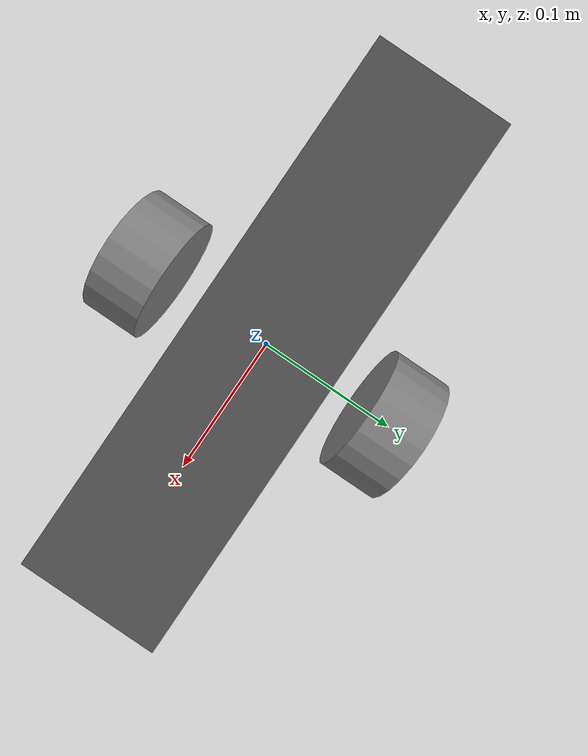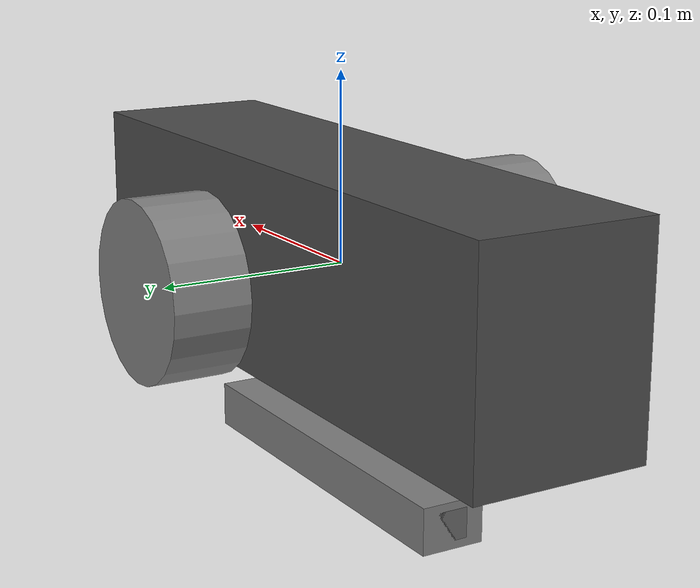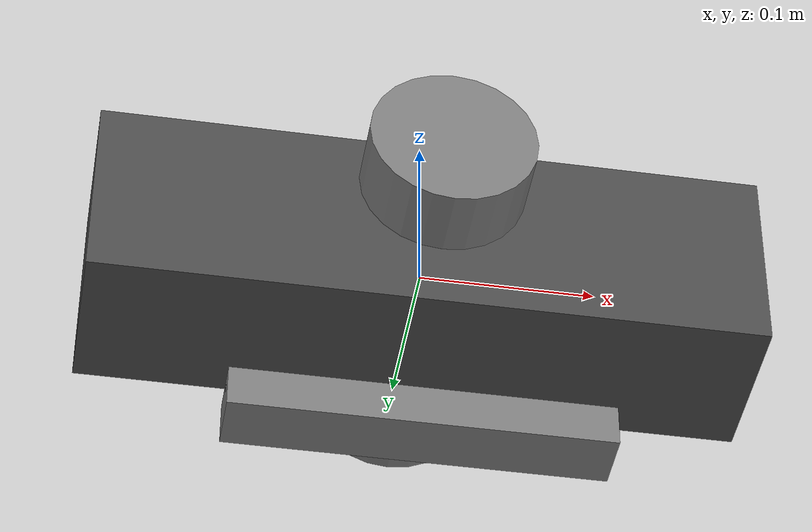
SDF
<?xml version="1.0" ?>
<sdf version="1.9">
  <model name="go2">

    <!-- base_link: massless floating base anchored to trunk -->
    <link name="base_link">
      <inertial><mass>0.001</mass><inertia><ixx>1e-6</ixx><ixy>0</ixy><ixz>0</ixz><iyy>1e-6</iyy><iyz>0</iyz><izz>1e-6</izz></inertia></inertial>
      <visual name="v"><geometry><box><size>0.001 0.001 0.001</size></box></geometry></visual>
      <collision name="c"><geometry><box><size>0.001 0.001 0.001</size></box></geometry></collision>
    </link>
    <joint name="floating_base" type="fixed"><parent>base_link</parent><child>trunk</child></joint>

    <!-- trunk: 0.3762 x 0.0935 x 0.114 m, 6.921 kg -->
    <link name="trunk">
      <inertial>
        <pose>0.021112 0 -0.005366 0 0 0</pose><mass>6.921</mass>
        <inertia><ixx>0.02448</ixx><ixy>0.00012166</ixy><ixz>0.0014849</ixz><iyy>0.098077</iyy><iyz>-3.12e-5</iyz><izz>0.107</izz></inertia>
      </inertial>
      <visual name="trunk_v">
        <geometry><box><size>0.3762 0.0935 0.114</size></box></geometry>
        <material><ambient>0.3 0.3 0.3 1</ambient><diffuse>0.3 0.3 0.3 1</diffuse></material>
      </visual>
      <collision name="trunk_c"><geometry><box><size>0.3762 0.0935 0.114</size></box></geometry></collision>
    </link>

    <!-- IMU link — body-centre, 200 Hz -->
    <link name="imu_link">
      <inertial><mass>0.001</mass><inertia><ixx>1e-4</ixx><ixy>0</ixy><ixz>0</ixz><iyy>1e-4</iyy><iyz>0</iyz><izz>1e-4</izz></inertia></inertial>
      <visual name="v"><geometry><box><size>0.001 0.001 0.001</size></box></geometry></visual>
      <collision name="c"><geometry><box><size>0.001 0.001 0.001</size></box></geometry></collision>
      <sensor name="imu_sensor" type="imu">
        <always_on>true</always_on><update_rate>200</update_rate>
        <imu/>
        <topic>/imu</topic>
      </sensor>
    </link>
    <joint name="imu_joint" type="fixed"><parent>trunk</parent><child>imu_link</child><pose>0 0 0 0 0 0</pose></joint>

    <!-- Livox MID-360 lidar — forward-top, pitch=-20 deg=-0.34907 rad -->
    <link name="lidar_link">
      <inertial><mass>0.01</mass><inertia><ixx>1e-6</ixx><ixy>0</ixy><ixz>0</ixz><iyy>1e-6</iyy><iyz>0</iyz><izz>1e-6</izz></inertia></inertial>
      <visual name="lidar_v">
        <geometry><cylinder><radius>0.045</radius><length>0.04</length></cylinder></geometry>
        <material><ambient>0.1 0.1 0.8 1</ambient><diffuse>0.1 0.1 0.8 1</diffuse></material>
      </visual>
      <collision name="lidar_c"><geometry><cylinder><radius>0.045</radius><length>0.04</length></cylinder></geometry></collision>
      <sensor name="livox_mid360" type="gpu_lidar">
        <always_on>true</always_on><update_rate>10</update_rate><visualize>false</visualize>
        <lidar>
          <scan>
            <horizontal><samples>360</samples><resolution>1</resolution><min_angle>-3.14159</min_angle><max_angle>3.14159</max_angle></horizontal>
            <vertical><samples>30</samples><resolution>1</resolution><min_angle>-0.5236</min_angle><max_angle>0.5236</max_angle></vertical>
          </scan>
          <range><min>0.1</min><max>12.0</max><resolution>0.01</resolution></range>
          <noise><type>gaussian</type><mean>0</mean><stddev>0.01</stddev></noise>
        </lidar>
        <topic>/scan</topic>
      </sensor>
    </link>
    <joint name="lidar_joint" type="fixed"><parent>trunk</parent><child>lidar_link</child><pose>0.3 0 0.2 0 -0.34907 0</pose></joint>

    <!-- D435 camera link — forward-mid, pitch=-5 deg=-0.08727 rad, RGB + Depth sensors co-located -->
    <link name="camera_link">
      <inertial><mass>0.01</mass><inertia><ixx>1e-6</ixx><ixy>0</ixy><ixz>0</ixz><iyy>1e-6</iyy><iyz>0</iyz><izz>1e-6</izz></inertia></inertial>
      <visual name="cam_v">
        <geometry><box><size>0.025 0.09 0.025</size></box></geometry>
        <material><ambient>0.05 0.05 0.05 1</ambient><diffuse>0.05 0.05 0.05 1</diffuse></material>
      </visual>
      <collision name="cam_c"><geometry><box><size>0.025 0.09 0.025</size></box></geometry></collision>
      <!-- RGB camera -->
      <sensor name="d435_rgb" type="camera">
        <always_on>true</always_on><update_rate>30</update_rate><visualize>false</visualize>
        <camera>
          <horizontal_fov>1.2</horizontal_fov>
          <image><width>640</width><height>480</height><format>R8G8B8</format></image>
          <clip><near>0.1</near><far>100.0</far></clip>
        </camera>
        <topic>/camera/image</topic>
      </sensor>
      <!-- Depth camera (co-located with RGB) -->
      <sensor name="d435_depth" type="depth_camera">
        <always_on>true</always_on><update_rate>30</update_rate><visualize>false</visualize>
        <camera>
          <horizontal_fov>1.2</horizontal_fov>
          <image><width>640</width><height>480</height><format>R_FLOAT32</format></image>
          <clip><near>0.3</near><far>10.0</far></clip>
        </camera>
        <topic>/camera/depth</topic>
      </sensor>
    </link>
    <joint name="camera_joint" type="fixed"><parent>trunk</parent><child>camera_link</child><pose>0.3 0 0.05 0 -0.08727 0</pose></joint>

    <!-- ===== FRONT-LEFT LEG (FL) ===== -->
    <!-- FL hip: abduction/adduction around X -->
    <link name="FL_hip">
      <inertial><pose>-0.0054 0.00194 -0.000105 0 0 0</pose><mass>0.678</mass><inertia><ixx>4.8e-4</ixx><ixy>-3.01e-6</ixy><ixz>1.11e-6</ixz><iyy>8.84e-4</iyy><iyz>-1.42e-6</iyz><izz>5.96e-4</izz></inertia></inertial>
      <visual name="FL_hip_v"><pose>0 0.0955 0 1.5708 0 0</pose><geometry><cylinder><radius>0.046</radius><length>0.04</length></cylinder></geometry><material><ambient>0.5 0.5 0.5 1</ambient><diffuse>0.5 0.5 0.5 1</diffuse></material></visual>
      <collision name="FL_hip_c"><pose>0 0.0955 0 1.5708 0 0</pose><geometry><cylinder><radius>0.046</radius><length>0.04</length></cylinder></geometry></collision>
    </link>
    <joint name="FL_hip_joint" type="revolute"><parent>trunk</parent><child>FL_hip</child><pose>0.1934 0.0465 0 0 0 0</pose><axis><xyz>1 0 0</xyz><dynamics><damping>0.1</damping><friction>0.2</friction></dynamics><limit><lower>-1.0472</lower><upper>1.0472</upper><effort>23.7</effort><velocity>30.1</velocity></limit></axis></joint>
    <!-- FL thigh: flexion/extension around Y -->
    <link name="FL_thigh">
      <inertial><pose>-0.00374 -0.0223 -0.0327 0 0 0</pose><mass>1.152</mass><inertia><ixx>5.84e-3</ixx><ixy>8.72e-5</ixy><ixz>-2.89e-4</ixz><iyy>5.8e-3</iyy><iyz>8.08e-4</iyz><izz>1.03e-3</izz></inertia></inertial>
      <visual name="FL_thigh_v"><pose>0 0 -0.1065 1.5708 0 0</pose><geometry><box><size>0.213 0.0245 0.034</size></box></geometry><material><ambient>0.5 0.5 0.5 1</ambient><diffuse>0.5 0.5 0.5 1</diffuse></material></visual>
      <collision name="FL_thigh_c"><pose>0 0 -0.1065 1.5708 0 0</pose><geometry><box><size>0.213 0.0245 0.034</size></box></geometry></collision>
    </link>
    <joint name="FL_thigh_joint" type="revolute"><parent>FL_hip</parent><child>FL_thigh</child><pose>0 0.0955 0 0 0 0</pose><axis><xyz>0 1 0</xyz><dynamics><damping>0.1</damping><friction>0.2</friction></dynamics><limit><lower>-1.5708</lower><upper>3.4907</upper><effort>23.7</effort><velocity>30.1</velocity></limit></axis></joint>
    <!-- FL calf -->
    <link name="FL_calf">
      <inertial><pose>0.00548 -0.000975 -0.115 0 0 0</pose><mass>0.154</mass><inertia><ixx>1.08e-3</ixx><ixy>3.4e-7</ixy><ixz>1.72e-5</ixz><iyy>1.1e-3</iyy><iyz>8.28e-6</iyz><izz>3.29e-5</izz></inertia></inertial>
      <visual name="FL_calf_v"><pose>0 0 -0.1065 1.5708 0 0</pose><geometry><box><size>0.213 0.016 0.016</size></box></geometry><material><ambient>0.4 0.4 0.4 1</ambient><diffuse>0.4 0.4 0.4 1</diffuse></material></visual>
      <collision name="FL_calf_c"><pose>0 0 -0.1065 1.5708 0 0</pose><geometry><box><size>0.213 0.016 0.016</size></box></geometry></collision>
    </link>
    <joint name="FL_calf_joint" type="revolute"><parent>FL_thigh</parent><child>FL_calf</child><pose>0 0 -0.213 0 0 0</pose><axis><xyz>0 1 0</xyz><dynamics><damping>0.1</damping><friction>0.2</friction></dynamics><limit><lower>-2.7227</lower><upper>-0.83776</upper><effort>35.55</effort><velocity>20.06</velocity></limit></axis></joint>

    <!-- ===== FRONT-RIGHT LEG (FR) ===== -->
    <link name="FR_hip">
      <inertial><pose>-0.0054 -0.00194 -0.000105 0 0 0</pose><mass>0.678</mass><inertia><ixx>4.8e-4</ixx><ixy>3.01e-6</ixy><ixz>1.11e-6</ixz><iyy>8.84e-4</iyy><iyz>1.42e-6</iyz><izz>5.96e-4</izz></inertia></inertial>
      <visual name="FR_hip_v"><pose>0 -0.0955 0 1.5708 0 0</pose><geometry><cylinder><radius>0.046</radius><length>0.04</length></cylinder></geometry><material><ambient>0.5 0.5 0.5 1</ambient><diffuse>0.5 0.5 0.5 1</diffuse></material></visual>
      <collision name="FR_hip_c"><pose>0 -0.0955 0 1.5708 0 0</pose><geometry><cylinder><radius>0.046</radius><length>0.04</length></cylinder></geometry></collision>
    </link>
    <joint name="FR_hip_joint" type="revolute"><parent>trunk</parent><child>FR_hip</child><pose>0.1934 -0.0465 0 0 0 0</pose><axis><xyz>1 0 0</xyz><dynamics><damping>0.1</damping><friction>0.2</friction></dynamics><limit><lower>-1.0472</lower><upper>1.0472</upper><effort>23.7</effort><velocity>30.1</velocity></limit></axis></joint>
    <link name="FR_thigh">
      <inertial><pose>-0.00374 0.0223 -0.0327 0 0 0</pose><mass>1.152</mass><inertia><ixx>5.84e-3</ixx><ixy>-8.72e-5</ixy><ixz>-2.89e-4</ixz><iyy>5.8e-3</iyy><iyz>-8.08e-4</iyz><izz>1.03e-3</izz></inertia></inertial>
      <visual name="FR_thigh_v"><pose>0 0 -0.1065 1.5708 0 0</pose><geometry><box><size>0.213 0.0245 0.034</size></box></geometry><material><ambient>0.5 0.5 0.5 1</ambient><diffuse>0.5 0.5 0.5 1</diffuse></material></visual>
      <collision name="FR_thigh_c"><pose>0 0 -0.1065 1.5708 0 0</pose><geometry><box><size>0.213 0.0245 0.034</size></box></geometry></collision>
    </link>
    <joint name="FR_thigh_joint" type="revolute"><parent>FR_hip</parent><child>FR_thigh</child><pose>0 -0.0955 0 0 0 0</pose><axis><xyz>0 1 0</xyz><dynamics><damping>0.1</damping><friction>0.2</friction></dynamics><limit><lower>-1.5708</lower><upper>3.4907</upper><effort>23.7</effort><velocity>30.1</velocity></limit></axis></joint>
    <link name="FR_calf">
      <inertial><pose>0.00548 0.000975 -0.115 0 0 0</pose><mass>0.154</mass><inertia><ixx>1.08e-3</ixx><ixy>-3.4e-7</ixy><ixz>1.72e-5</ixz><iyy>1.1e-3</iyy><iyz>-8.28e-6</iyz><izz>3.29e-5</izz></inertia></inertial>
      <visual name="FR_calf_v"><pose>0 0 -0.1065 1.5708 0 0</pose><geometry><box><size>0.213 0.016 0.016</size></box></geometry><material><ambient>0.4 0.4 0.4 1</ambient><diffuse>0.4 0.4 0.4 1</diffuse></material></visual>
      <collision name="FR_calf_c"><pose>0 0 -0.1065 1.5708 0 0</pose><geometry><box><size>0.213 0.016 0.016</size></box></geometry></collision>
    </link>
    <joint name="FR_calf_joint" type="revolute"><parent>FR_thigh</parent><child>FR_calf</child><pose>0 0 -0.213 0 0 0</pose><axis><xyz>0 1 0</xyz><dynamics><damping>0.1</damping><friction>0.2</friction></dynamics><limit><lower>-2.7227</lower><upper>-0.83776</upper><effort>35.55</effort><velocity>20.06</velocity></limit></axis></joint>

    <!-- ===== REAR-LEFT LEG (RL) ===== -->
    <link name="RL_hip">
      <inertial><pose>0.0054 0.00194 -0.000105 0 0 0</pose><mass>0.678</mass><inertia><ixx>4.8e-4</ixx><ixy>3.01e-6</ixy><ixz>-1.11e-6</ixz><iyy>8.84e-4</iyy><iyz>-1.42e-6</iyz><izz>5.96e-4</izz></inertia></inertial>
      <visual name="RL_hip_v"><pose>0 0.0955 0 1.5708 0 0</pose><geometry><cylinder><radius>0.046</radius><length>0.04</length></cylinder></geometry><material><ambient>0.5 0.5 0.5 1</ambient><diffuse>0.5 0.5 0.5 1</diffuse></material></visual>
      <collision name="RL_hip_c"><pose>0 0.0955 0 1.5708 0 0</pose><geometry><cylinder><radius>0.046</radius><length>0.04</length></cylinder></geometry></collision>
    </link>
    <joint name="RL_hip_joint" type="revolute"><parent>trunk</parent><child>RL_hip</child><pose>-0.1934 0.0465 0 0 0 0</pose><axis><xyz>1 0 0</xyz><dynamics><damping>0.1</damping><friction>0.2</friction></dynamics><limit><lower>-1.0472</lower><upper>1.0472</upper><effort>23.7</effort><velocity>30.1</velocity></limit></axis></joint>
    <link name="RL_thigh">
      <inertial><pose>0.00374 -0.0223 -0.0327 0 0 0</pose><mass>1.152</mass><inertia><ixx>5.84e-3</ixx><ixy>-8.72e-5</ixy><ixz>2.89e-4</ixz><iyy>5.8e-3</iyy><iyz>8.08e-4</iyz><izz>1.03e-3</izz></inertia></inertial>
      <visual name="RL_thigh_v"><pose>0 0 -0.1065 1.5708 0 0</pose><geometry><box><size>0.213 0.0245 0.034</size></box></geometry><material><ambient>0.5 0.5 0.5 1</ambient><diffuse>0.5 0.5 0.5 1</diffuse></material></visual>
      <collision name="RL_thigh_c"><pose>0 0 -0.1065 1.5708 0 0</pose><geometry><box><size>0.213 0.0245 0.034</size></box></geometry></collision>
    </link>
    <joint name="RL_thigh_joint" type="revolute"><parent>RL_hip</parent><child>RL_thigh</child><pose>0 0.0955 0 0 0 0</pose><axis><xyz>0 1 0</xyz><dynamics><damping>0.1</damping><friction>0.2</friction></dynamics><limit><lower>-1.5708</lower><upper>3.4907</upper><effort>23.7</effort><velocity>30.1</velocity></limit></axis></joint>
    <link name="RL_calf">
      <inertial><pose>-0.00548 -0.000975 -0.115 0 0 0</pose><mass>0.154</mass><inertia><ixx>1.08e-3</ixx><ixy>-3.4e-7</ixy><ixz>-1.72e-5</ixz><iyy>1.1e-3</iyy><iyz>8.28e-6</iyz><izz>3.29e-5</izz></inertia></inertial>
      <visual name="RL_calf_v"><pose>0 0 -0.1065 1.5708 0 0</pose><geometry><box><size>0.213 0.016 0.016</size></box></geometry><material><ambient>0.4 0.4 0.4 1</ambient><diffuse>0.4 0.4 0.4 1</diffuse></material></visual>
      <collision name="RL_calf_c"><pose>0 0 -0.1065 1.5708 0 0</pose><geometry><box><size>0.213 0.016 0.016</size></box></geometry></collision>
    </link>
    <joint name="RL_calf_joint" type="revolute"><parent>RL_thigh</parent><child>RL_calf</child><pose>0 0 -0.213 0 0 0</pose><axis><xyz>0 1 0</xyz><dynamics><damping>0.1</damping><friction>0.2</friction></dynamics><limit><lower>-2.7227</lower><upper>-0.83776</upper><effort>35.55</effort><velocity>20.06</velocity></limit></axis></joint>

    <!-- ===== REAR-RIGHT LEG (RR) ===== -->
    <link name="RR_hip">
      <inertial><pose>0.0054 -0.00194 -0.000105 0 0 0</pose><mass>0.678</mass><inertia><ixx>4.8e-4</ixx><ixy>-3.01e-6</ixy><ixz>-1.11e-6</ixz><iyy>8.84e-4</iyy><iyz>1.42e-6</iyz><izz>5.96e-4</izz></inertia></inertial>
      <visual name="RR_hip_v"><pose>0 -0.0955 0 1.5708 0 0</pose><geometry><cylinder><radius>0.046</radius><length>0.04</length></cylinder></geometry><material><ambient>0.5 0.5 0.5 1</ambient><diffuse>0.5 0.5 0.5 1</diffuse></material></visual>
      <collision name="RR_hip_c"><pose>0 -0.0955 0 1.5708 0 0</pose><geometry><cylinder><radius>0.046</radius><length>0.04</length></cylinder></geometry></collision>
    </link>
    <joint name="RR_hip_joint" type="revolute"><parent>trunk</parent><child>RR_hip</child><pose>-0.1934 -0.0465 0 0 0 0</pose><axis><xyz>1 0 0</xyz><dynamics><damping>0.1</damping><friction>0.2</friction></dynamics><limit><lower>-1.0472</lower><upper>1.0472</upper><effort>23.7</effort><velocity>30.1</velocity></limit></axis></joint>
    <link name="RR_thigh">
      <inertial><pose>0.00374 0.0223 -0.0327 0 0 0</pose><mass>1.152</mass><inertia><ixx>5.84e-3</ixx><ixy>8.72e-5</ixy><ixz>2.89e-4</ixz><iyy>5.8e-3</iyy><iyz>-8.08e-4</iyz><izz>1.03e-3</izz></inertia></inertial>
      <visual name="RR_thigh_v"><pose>0 0 -0.1065 1.5708 0 0</pose><geometry><box><size>0.213 0.0245 0.034</size></box></geometry><material><ambient>0.5 0.5 0.5 1</ambient><diffuse>0.5 0.5 0.5 1</diffuse></material></visual>
      <collision name="RR_thigh_c"><pose>0 0 -0.1065 1.5708 0 0</pose><geometry><box><size>0.213 0.0245 0.034</size></box></geometry></collision>
    </link>
    <joint name="RR_thigh_joint" type="revolute"><parent>RR_hip</parent><child>RR_thigh</child><pose>0 -0.0955 0 0 0 0</pose><axis><xyz>0 1 0</xyz><dynamics><damping>0.1</damping><friction>0.2</friction></dynamics><limit><lower>-1.5708</lower><upper>3.4907</upper><effort>23.7</effort><velocity>30.1</velocity></limit></axis></joint>
    <link name="RR_calf">
      <inertial><pose>-0.00548 0.000975 -0.115 0 0 0</pose><mass>0.154</mass><inertia><ixx>1.08e-3</ixx><ixy>3.4e-7</ixy><ixz>-1.72e-5</ixz><iyy>1.1e-3</iyy><iyz>-8.28e-6</iyz><izz>3.29e-5</izz></inertia></inertial>
      <visual name="RR_calf_v"><pose>0 0 -0.1065 1.5708 0 0</pose><geometry><box><size>0.213 0.016 0.016</size></box></geometry><material><ambient>0.4 0.4 0.4 1</ambient><diffuse>0.4 0.4 0.4 1</diffuse></material></visual>
      <collision name="RR_calf_c"><pose>0 0 -0.1065 1.5708 0 0</pose><geometry><box><size>0.213 0.016 0.016</size></box></geometry></collision>
    </link>
    <joint name="RR_calf_joint" type="revolute"><parent>RR_thigh</parent><child>RR_calf</child><pose>0 0 -0.213 0 0 0</pose><axis><xyz>0 1 0</xyz><dynamics><damping>0.1</damping><friction>0.2</friction></dynamics><limit><lower>-2.7227</lower><upper>-0.83776</upper><effort>35.55</effort><velocity>20.06</velocity></limit></axis></joint>

    <plugin filename="gz_quadruped_hardware-system"
            name="gz_quadruped_hardware::GazeboSimQuadrupedPlugin">
      <parameters>gazebo/models/go2/ros2_control.yaml</parameters>
    </plugin>

    <!-- IMU and force-torque system plugins required by gz_quadruped_hardware -->
    <plugin filename="gz-sim-imu-system"
            name="gz::sim::systems::Imu"/>
    <plugin filename="gz-sim-forcetorque-system"
            name="gz::sim::systems::ForceTorque"/>

  </model>
</sdf>
